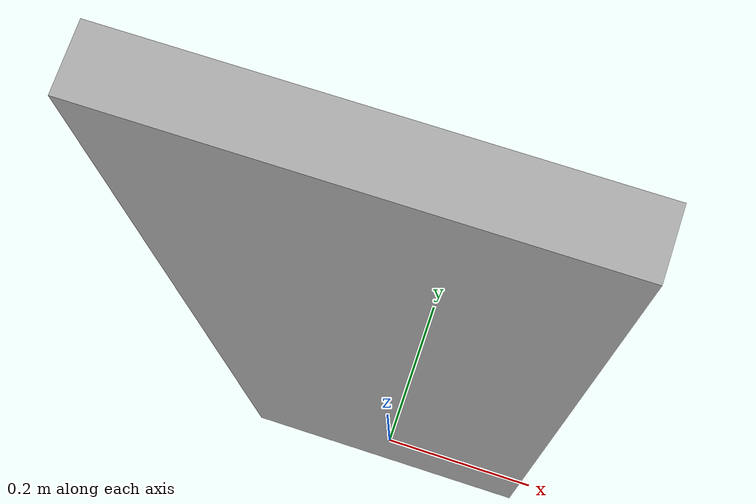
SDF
<?xml version="1.0" ?>
<sdf version="1.6">
  <model name="person_child_3">
    <static>true</static>
    <link name="link">
      <gravity>false</gravity>
      <pose>0 0 0.525 0 0 0</pose>
      <visual name="visual">
        <geometry><box><size>0.36 0.05 1.05</size></box></geometry>
        <material>
          <script>
            <uri>model://person_child_3/materials/scripts</uri>
            <uri>model://person_child_3/materials/textures</uri>
            <name>PersonChild3/Diffuse</name>
          </script>
        </material>
      </visual>
    </link>
  </model>
</sdf>
